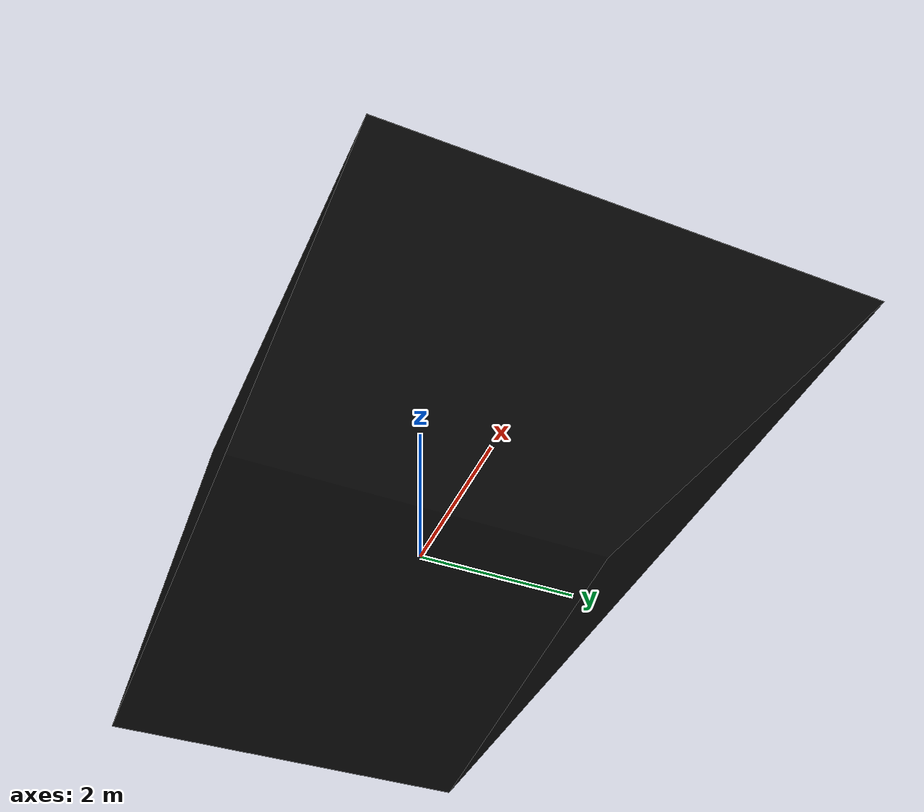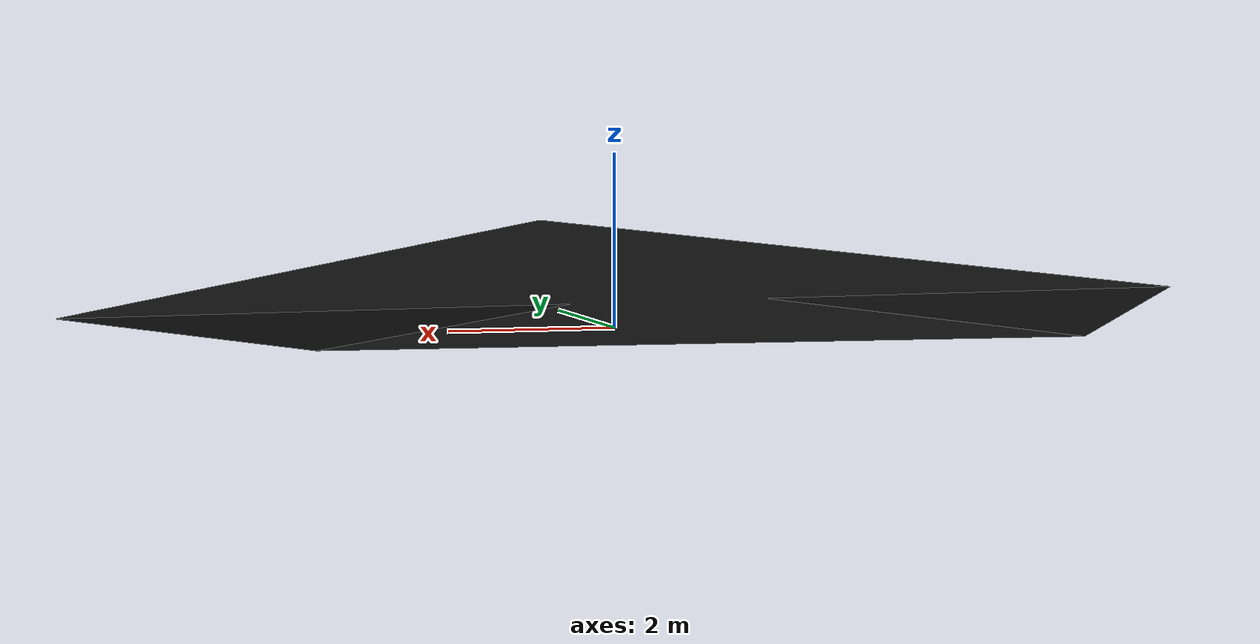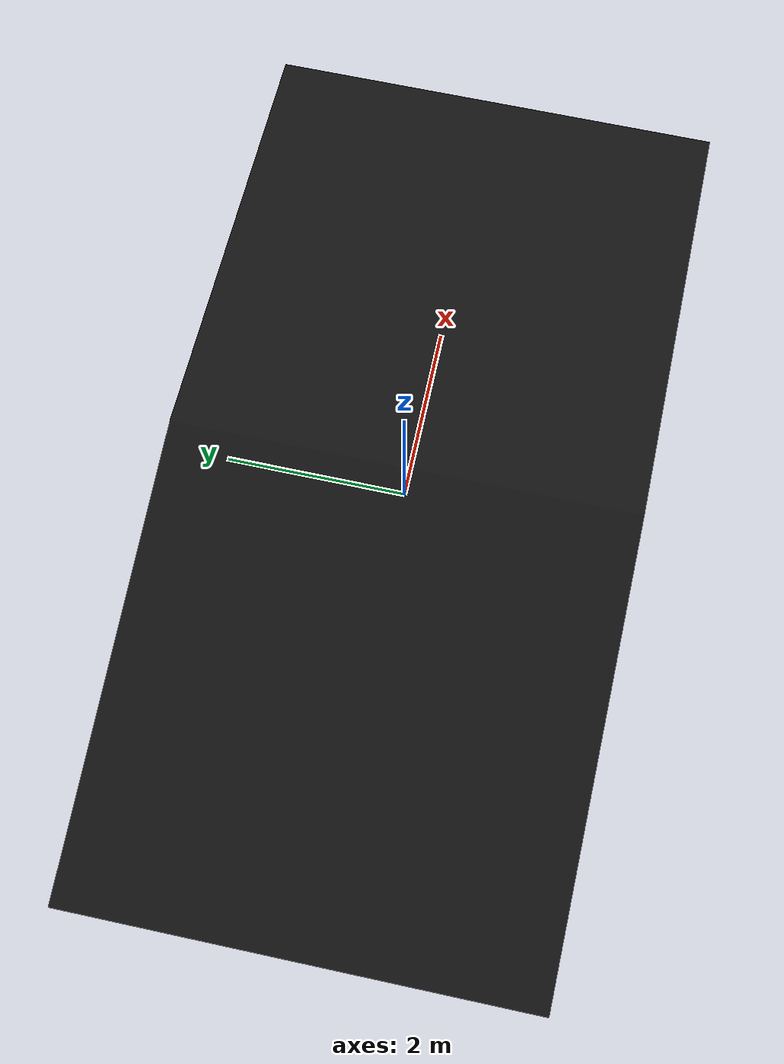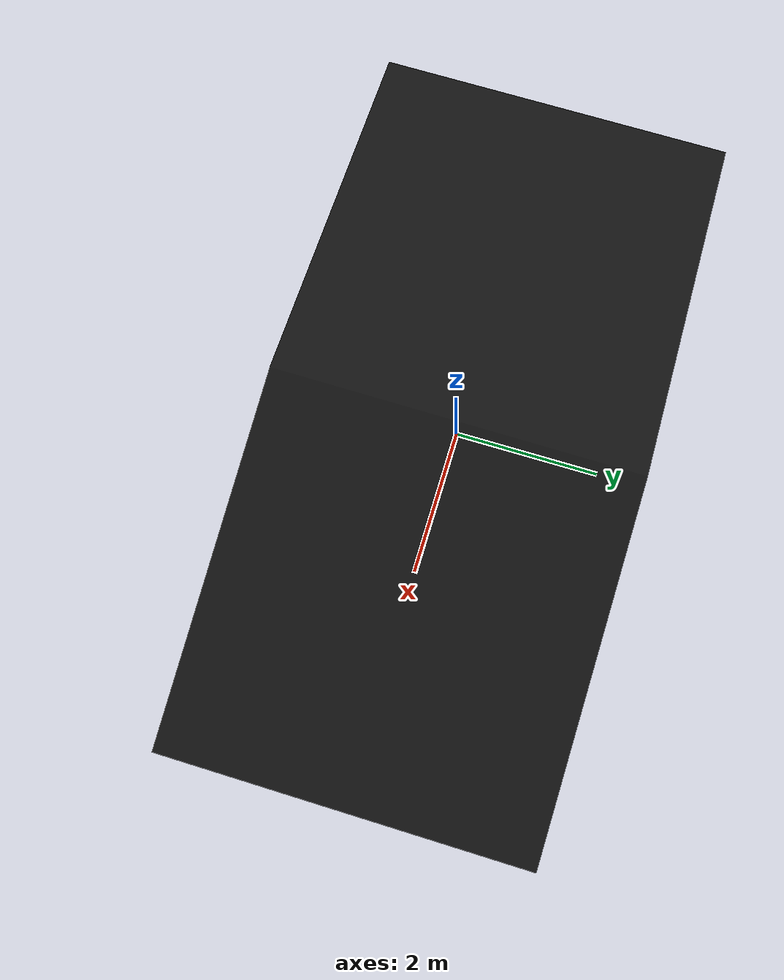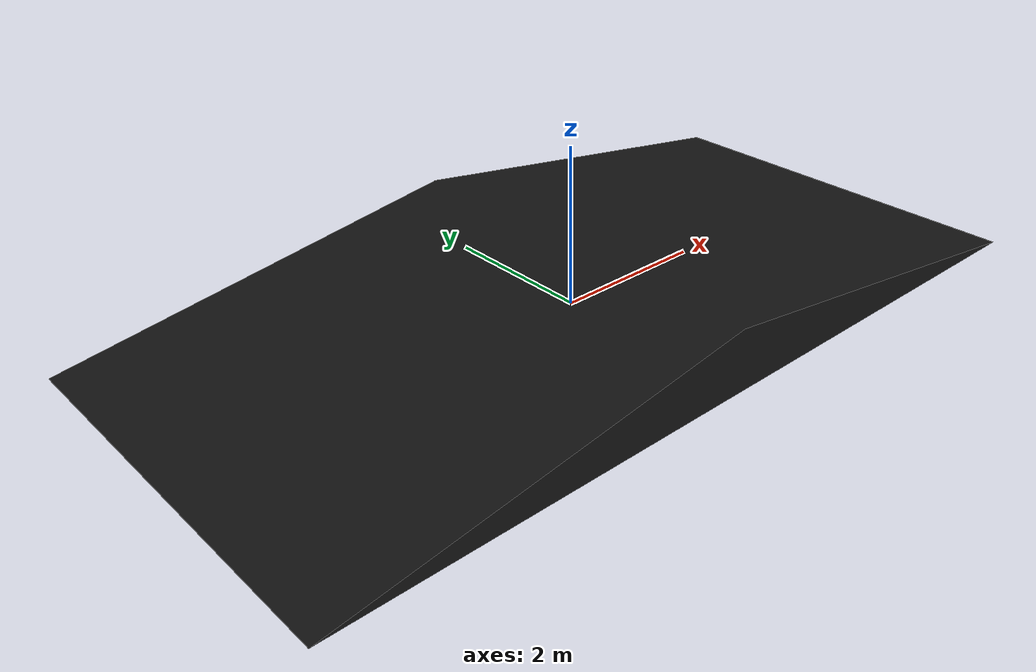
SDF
<?xml version='1.0'?>
<sdf version='1.4'>
  <model name='traffic_barrel'>
    <static>true</static>
    <link name="barrel">
      <visual name="visual">
            <geometry>
                <mesh>
                    <uri>model://ramp/materials/meshes/ramp.dae</uri>
		    <scale>2.6 2.6 2.6</scale>
                </mesh>
            </geometry>
            <material>
                <script>
                    <uri>model://ramp/materials/scripts</uri>
                    <uri>model://ramp/materials/textures</uri>
                    <name>ramp/Image</name>
                </script>
            </material>
        </visual>
        <collision name="collision">
            <geometry>
                <mesh>
                    <uri>model://ramp/materials/meshes/ramp.dae</uri>
		            <scale>2.6 2.6 2.6</scale>
                </mesh>
            </geometry>
        </collision>
    </link>
  </model>
</sdf>
